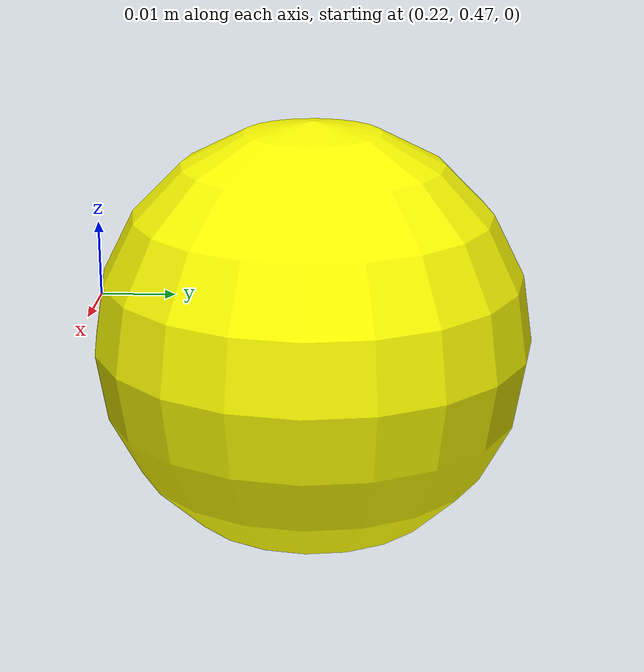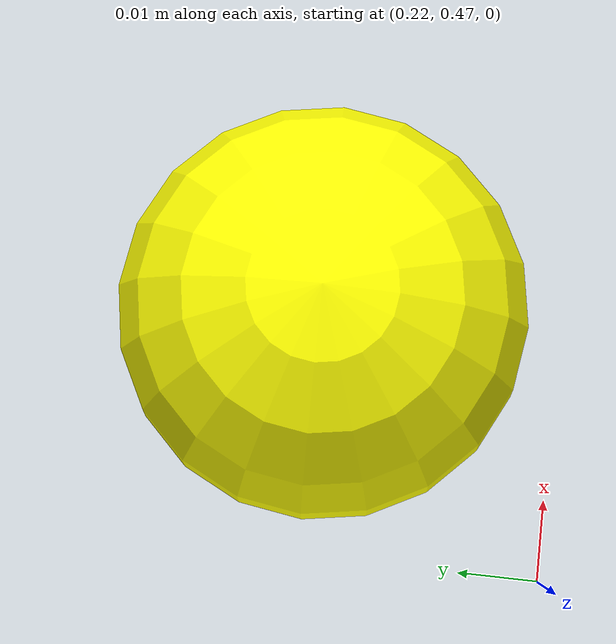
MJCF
<mujoco model="ball_model">
    <worldbody>
        <body name="ball" pos="0.25 0.5 0.005">
            <joint name="ball_joint" damping="0.0" pos="0 0 0" stiffness="0" frictionloss="0" type="free"/>
            <geom size="0.025" type="sphere" condim="4" name="ball_contact" rgba="1 1 0 1" mass="0.05"
                  friction="0.1 0.1 0.1" solimp="0.9 0.95 0.001 0.5 2" solref="0.1 0.03" priority="1"/>
            <site name="target_ball" pos="0 0 0" size="0.02 0.02 0.02" rgba="1 0 0 1" type="sphere"/>
        </body>
    </worldbody>
</mujoco>
